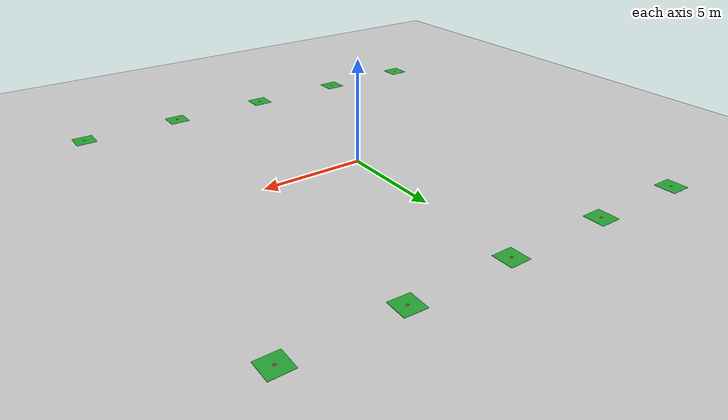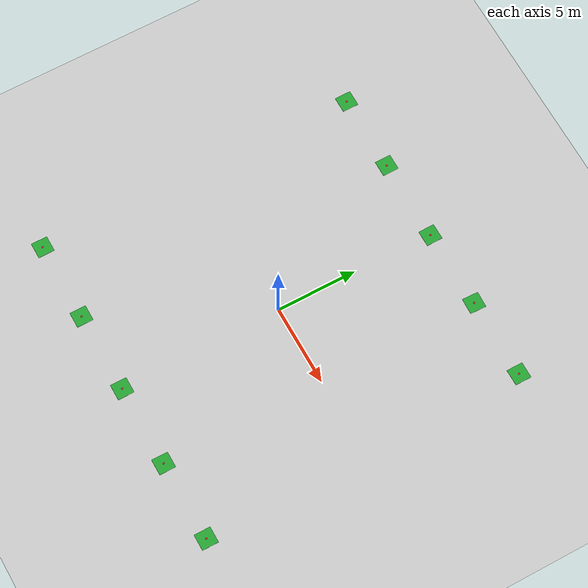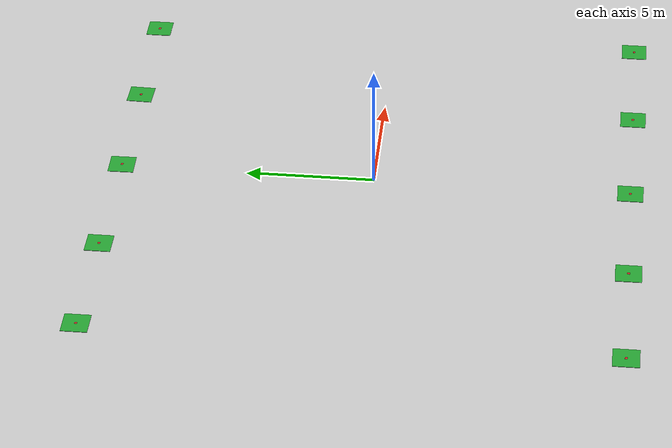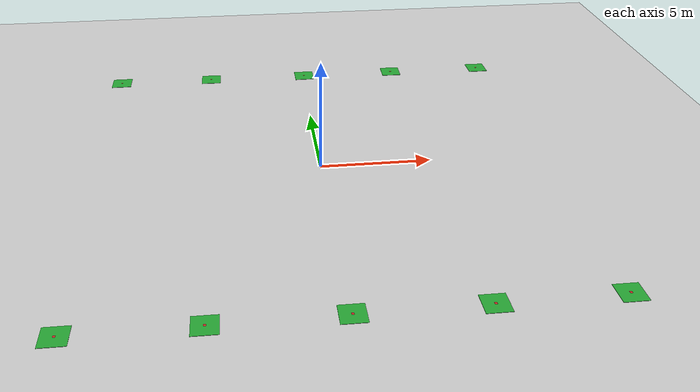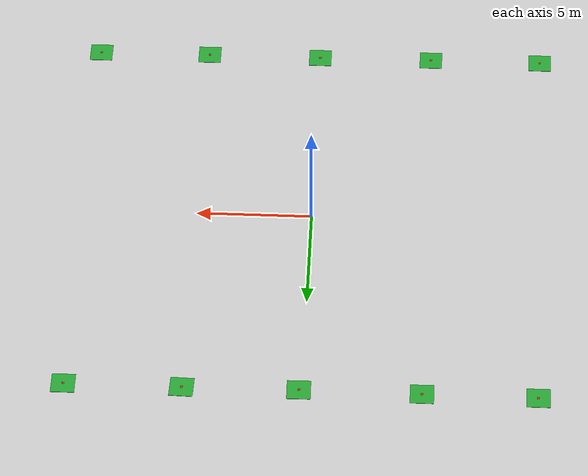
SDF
<sdf version="1.7">
 <world name="default">
  <physics type="ode">
   <ode>
    <solver>
     <type>quick</type>
     <iters>100</iters>
     <sor>1</sor>
     <use_dynamic_moi_rescaling>0</use_dynamic_moi_rescaling>
    </solver>
    <constraints>
     <cfm>0</cfm>
     <erp>0.9</erp>
     <contact_max_correcting_vel>0.1</contact_max_correcting_vel>
     <contact_surface_layer>0</contact_surface_layer>
    </constraints>
   </ode>
   <real_time_update_rate>-1</real_time_update_rate>
   <max_step_size>0.001</max_step_size>
   <real_time_factor>1</real_time_factor>
  </physics>
  <light name="sun" type="directional">
   <pose>0 0 10 0 -0 0</pose>
   <diffuse>0.8 0.8 0.8 1</diffuse>
   <specular>0.2 0.2 0.2 1</specular>
   <attenuation>
    <range>1000</range>
    <constant>0.9</constant>
    <linear>0.01</linear>
    <quadratic>0.001</quadratic>
   </attenuation>
   <direction>-0.5 0.1 -0.9</direction>
   <spot><inner_angle>0</inner_angle><outer_angle>0</outer_angle><falloff>0</falloff></spot>
  </light>
  <model name="ground_plane">
   <static>1</static>
   <link name="link">
    <collision name="collision">
     <geometry><plane><normal>0 0 1</normal><size>100 100</size></plane></geometry>
     <surface>
      <contact><collide_bitmask>65535</collide_bitmask></contact>
      <friction><ode><mu>100</mu><mu2>50</mu2></ode></friction>
     </surface>
    </collision>
    <visual name="visual">
     <cast_shadows>0</cast_shadows>
     <geometry><plane><normal>0 0 1</normal><size>100 100</size></plane></geometry>
     <material>
      <script><uri>file://media/materials/scripts/gazebo.material</uri><name>Gazebo/Grey</name></script>
     </material>
    </visual>
   </link>
  </model>
  <model name="irlock_beacon_01">
   <pose>5.01105 9.99095 0.008498 -1e-06 -0.002998 -0.032514</pose>
   <link name="link">
    <inertial>
     <mass>3</mass>
     <inertia><ixx>0.019</ixx><ixy>0</ixy><ixz>0</ixz><iyy>0.01</iyy><iyz>0</iyz><izz>0.01</izz></inertia>
    </inertial>
    <collision name="collision">
     <geometry><box><size>1 1 0.02</size></box></geometry>
     <surface>
      <friction><ode><mu>1</mu><mu2>1</mu2><fdir1>1 0 0</fdir1></ode></friction>
      <contact><ode><kp>1e+12</kp><kd>1</kd><max_vel>10</max_vel><min_depth>0.003</min_depth></ode></contact>
     </surface>
    </collision>
    <visual name="visual2">
     <geometry><box><size>1 1 0.018</size></box></geometry>
     <material><script><name>Gazebo/Green</name><uri>__default__</uri></script></material>
    </visual>
    <visual name="visual">
     <geometry><box><size>0.1 0.1 0.02</size></box></geometry>
     <material><script><name>Gazebo/Red</name><uri>__default__</uri></script></material>
    </visual>
   </link>
  </model>
  <gravity>0 0 -9.8</gravity>
  <magnetic_field>6e-06 2.3e-05 -4.2e-05</magnetic_field>
  <atmosphere type="adiabatic"/>
  <scene><ambient>0.4 0.4 0.4 1</ambient><background>0.7 0.7 0.7 1</background><shadows>1</shadows></scene>
  <spherical_coordinates>
   <surface_model>EARTH_WGS84</surface_model>
   <latitude_deg>0</latitude_deg>
   <longitude_deg>0</longitude_deg>
   <elevation>0</elevation>
   <heading_deg>0</heading_deg>
  </spherical_coordinates>
  <model name="irlock_beacon_01_clone">
   <pose>5.03543 -10.0093 0.007632 0 0.001264 0</pose>
   <link name="link">
    <inertial>
     <mass>3</mass>
     <inertia><ixx>0.019</ixx><ixy>0</ixy><ixz>0</ixz><iyy>0.01</iyy><iyz>0</iyz><izz>0.01</izz></inertia>
    </inertial>
    <collision name="collision">
     <geometry><box><size>1 1 0.02</size></box></geometry>
     <surface>
      <friction><ode><mu>1</mu><mu2>1</mu2><fdir1>1 0 0</fdir1></ode></friction>
      <contact><ode><kp>1e+12</kp><kd>1</kd><max_vel>10</max_vel><min_depth>0.003</min_depth></ode></contact>
     </surface>
    </collision>
    <visual name="visual2">
     <geometry><box><size>1 1 0.018</size></box></geometry>
     <material><script><name>Gazebo/Green</name><uri>__default__</uri></script></material>
    </visual>
    <visual name="visual">
     <geometry><box><size>0.1 0.1 0.02</size></box></geometry>
     <material><script><name>Gazebo/Red</name><uri>__default__</uri></script></material>
    </visual>
   </link>
  </model>
  <model name="irlock_beacon_01_clone_clone">
   <pose>9.95036 9.97779 0.007634 0 0.001268 0</pose>
   <link name="link">
    <inertial>
     <mass>3</mass>
     <inertia><ixx>0.019</ixx><ixy>0</ixy><ixz>0</ixz><iyy>0.01</iyy><iyz>0</iyz><izz>0.01</izz></inertia>
    </inertial>
    <collision name="collision">
     <geometry><box><size>1 1 0.02</size></box></geometry>
     <surface>
      <friction><ode><mu>1</mu><mu2>1</mu2><fdir1>1 0 0</fdir1></ode></friction>
      <contact><ode><kp>1e+12</kp><kd>1</kd><max_vel>10</max_vel><min_depth>0.003</min_depth></ode></contact>
     </surface>
    </collision>
    <visual name="visual2">
     <geometry><box><size>1 1 0.018</size></box></geometry>
     <material><script><name>Gazebo/Green</name><uri>__default__</uri></script></material>
    </visual>
    <visual name="visual">
     <geometry><box><size>0.1 0.1 0.02</size></box></geometry>
     <material><script><name>Gazebo/Red</name><uri>__default__</uri></script></material>
    </visual>
   </link>
  </model>
  <model name="irlock_beacon_01_clone_clone_0">
   <pose>0.131259 9.9603 0.008498 -0 -0.002998 0.010118</pose>
   <link name="link">
    <inertial>
     <mass>3</mass>
     <inertia><ixx>0.019</ixx><ixy>0</ixy><ixz>0</ixz><iyy>0.01</iyy><iyz>0</iyz><izz>0.01</izz></inertia>
    </inertial>
    <collision name="collision">
     <geometry><box><size>1 1 0.02</size></box></geometry>
     <surface>
      <friction><ode><mu>1</mu><mu2>1</mu2><fdir1>1 0 0</fdir1></ode></friction>
      <contact><ode><kp>1e+12</kp><kd>1</kd><max_vel>10</max_vel><min_depth>0.003</min_depth></ode></contact>
     </surface>
    </collision>
    <visual name="visual2">
     <geometry><box><size>1 1 0.018</size></box></geometry>
     <material><script><name>Gazebo/Green</name><uri>__default__</uri></script></material>
    </visual>
    <visual name="visual">
     <geometry><box><size>0.1 0.1 0.02</size></box></geometry>
     <material><script><name>Gazebo/Red</name><uri>__default__</uri></script></material>
    </visual>
   </link>
  </model>
  <model name="irlock_beacon_01_clone_clone_1">
   <pose>9.97803 -9.96773 0.007632 0 0.001264 0</pose>
   <link name="link">
    <inertial>
     <mass>3</mass>
     <inertia><ixx>0.019</ixx><ixy>0</ixy><ixz>0</ixz><iyy>0.01</iyy><iyz>0</iyz><izz>0.01</izz></inertia>
    </inertial>
    <collision name="collision">
     <geometry><box><size>1 1 0.02</size></box></geometry>
     <surface>
      <friction><ode><mu>1</mu><mu2>1</mu2><fdir1>1 0 0</fdir1></ode></friction>
      <contact><ode><kp>1e+12</kp><kd>1</kd><max_vel>10</max_vel><min_depth>0.003</min_depth></ode></contact>
     </surface>
    </collision>
    <visual name="visual2">
     <geometry><box><size>1 1 0.018</size></box></geometry>
     <material><script><name>Gazebo/Green</name><uri>__default__</uri></script></material>
    </visual>
    <visual name="visual">
     <geometry><box><size>0.1 0.1 0.02</size></box></geometry>
     <material><script><name>Gazebo/Red</name><uri>__default__</uri></script></material>
    </visual>
   </link>
  </model>
  <model name="irlock_beacon_01_clone_0">
   <pose>-9.8212 10.0177 0.008492 0 -0.002985 0.000271</pose>
   <link name="link">
    <inertial>
     <mass>3</mass>
     <inertia><ixx>0.019</ixx><ixy>0</ixy><ixz>0</ixz><iyy>0.01</iyy><iyz>0</iyz><izz>0.01</izz></inertia>
    </inertial>
    <collision name="collision">
     <geometry><box><size>1 1 0.02</size></box></geometry>
     <surface>
      <friction><ode><mu>1</mu><mu2>1</mu2><fdir1>1 0 0</fdir1></ode></friction>
      <contact><ode><kp>1e+12</kp><kd>1</kd><max_vel>10</max_vel><min_depth>0.003</min_depth></ode></contact>
     </surface>
    </collision>
    <visual name="visual2">
     <geometry><box><size>1 1 0.018</size></box></geometry>
     <material><script><name>Gazebo/Green</name><uri>__default__</uri></script></material>
    </visual>
    <visual name="visual">
     <geometry><box><size>0.1 0.1 0.02</size></box></geometry>
     <material><script><name>Gazebo/Red</name><uri>__default__</uri></script></material>
    </visual>
   </link>
  </model>
  <model name="irlock_beacon_01_clone_1">
   <pose>-9.97075 -10.0377 0.008498 0 0.002997 -0.000849</pose>
   <link name="link">
    <inertial>
     <mass>3</mass>
     <inertia><ixx>0.019</ixx><ixy>0</ixy><ixz>0</ixz><iyy>0.01</iyy><iyz>0</iyz><izz>0.01</izz></inertia>
    </inertial>
    <collision name="collision">
     <geometry><box><size>1 1 0.02</size></box></geometry>
     <surface>
      <friction><ode><mu>1</mu><mu2>1</mu2><fdir1>1 0 0</fdir1></ode></friction>
      <contact><ode><kp>1e+12</kp><kd>1</kd><max_vel>10</max_vel><min_depth>0.003</min_depth></ode></contact>
     </surface>
    </collision>
    <visual name="visual2">
     <geometry><box><size>1 1 0.018</size></box></geometry>
     <material><script><name>Gazebo/Green</name><uri>__default__</uri></script></material>
    </visual>
    <visual name="visual">
     <geometry><box><size>0.1 0.1 0.02</size></box></geometry>
     <material><script><name>Gazebo/Red</name><uri>__default__</uri></script></material>
    </visual>
   </link>
  </model>
  <model name="irlock_beacon_01_clone_2">
   <pose>0.001832 -9.99977 0.008494 -0 0.002989 -0.001255</pose>
   <link name="link">
    <inertial>
     <mass>3</mass>
     <inertia><ixx>0.019</ixx><ixy>0</ixy><ixz>0</ixz><iyy>0.01</iyy><iyz>0</iyz><izz>0.01</izz></inertia>
    </inertial>
    <collision name="collision">
     <geometry><box><size>1 1 0.02</size></box></geometry>
     <surface>
      <friction><ode><mu>1</mu><mu2>1</mu2><fdir1>1 0 0</fdir1></ode></friction>
      <contact><ode><kp>1e+12</kp><kd>1</kd><max_vel>10</max_vel><min_depth>0.003</min_depth></ode></contact>
     </surface>
    </collision>
    <visual name="visual2">
     <geometry><box><size>1 1 0.018</size></box></geometry>
     <material><script><name>Gazebo/Green</name><uri>__default__</uri></script></material>
    </visual>
    <visual name="visual">
     <geometry><box><size>0.1 0.1 0.02</size></box></geometry>
     <material><script><name>Gazebo/Red</name><uri>__default__</uri></script></material>
    </visual>
   </link>
  </model>
  <model name="irlock_beacon_01_clone_3">
   <pose>-4.99158 9.99319 0.008497 -0 0.002995 -0.004174</pose>
   <link name="link">
    <inertial>
     <mass>3</mass>
     <inertia><ixx>0.019</ixx><ixy>0</ixy><ixz>0</ixz><iyy>0.01</iyy><iyz>0</iyz><izz>0.01</izz></inertia>
    </inertial>
    <collision name="collision">
     <geometry><box><size>1 1 0.02</size></box></geometry>
     <surface>
      <friction><ode><mu>1</mu><mu2>1</mu2><fdir1>1 0 0</fdir1></ode></friction>
      <contact><ode><kp>1e+12</kp><kd>1</kd><max_vel>10</max_vel><min_depth>0.003</min_depth></ode></contact>
     </surface>
    </collision>
    <visual name="visual2">
     <geometry><box><size>1 1 0.018</size></box></geometry>
     <material><script><name>Gazebo/Green</name><uri>__default__</uri></script></material>
    </visual>
    <visual name="visual">
     <geometry><box><size>0.1 0.1 0.02</size></box></geometry>
     <material><script><name>Gazebo/Red</name><uri>__default__</uri></script></material>
    </visual>
   </link>
  </model>
  <model name="irlock_beacon_01_clone_2_clone">
   <pose>-5.02633 -10.0279 0.008498 0 0.002997 -0.001279</pose>
   <link name="link">
    <inertial>
     <mass>3</mass>
     <inertia><ixx>0.019</ixx><ixy>0</ixy><ixz>0</ixz><iyy>0.01</iyy><iyz>0</iyz><izz>0.01</izz></inertia>
    </inertial>
    <collision name="collision">
     <geometry><box><size>1 1 0.02</size></box></geometry>
     <surface>
      <friction><ode><mu>1</mu><mu2>1</mu2><fdir1>1 0 0</fdir1></ode></friction>
      <contact><ode><kp>1e+12</kp><kd>1</kd><max_vel>10</max_vel><min_depth>0.003</min_depth></ode></contact>
     </surface>
    </collision>
    <visual name="visual2">
     <geometry><box><size>1 1 0.018</size></box></geometry>
     <material><script><name>Gazebo/Green</name><uri>__default__</uri></script></material>
    </visual>
    <visual name="visual">
     <geometry><box><size>0.1 0.1 0.02</size></box></geometry>
     <material><script><name>Gazebo/Red</name><uri>__default__</uri></script></material>
    </visual>
   </link>
  </model>
 </world>
</sdf>
